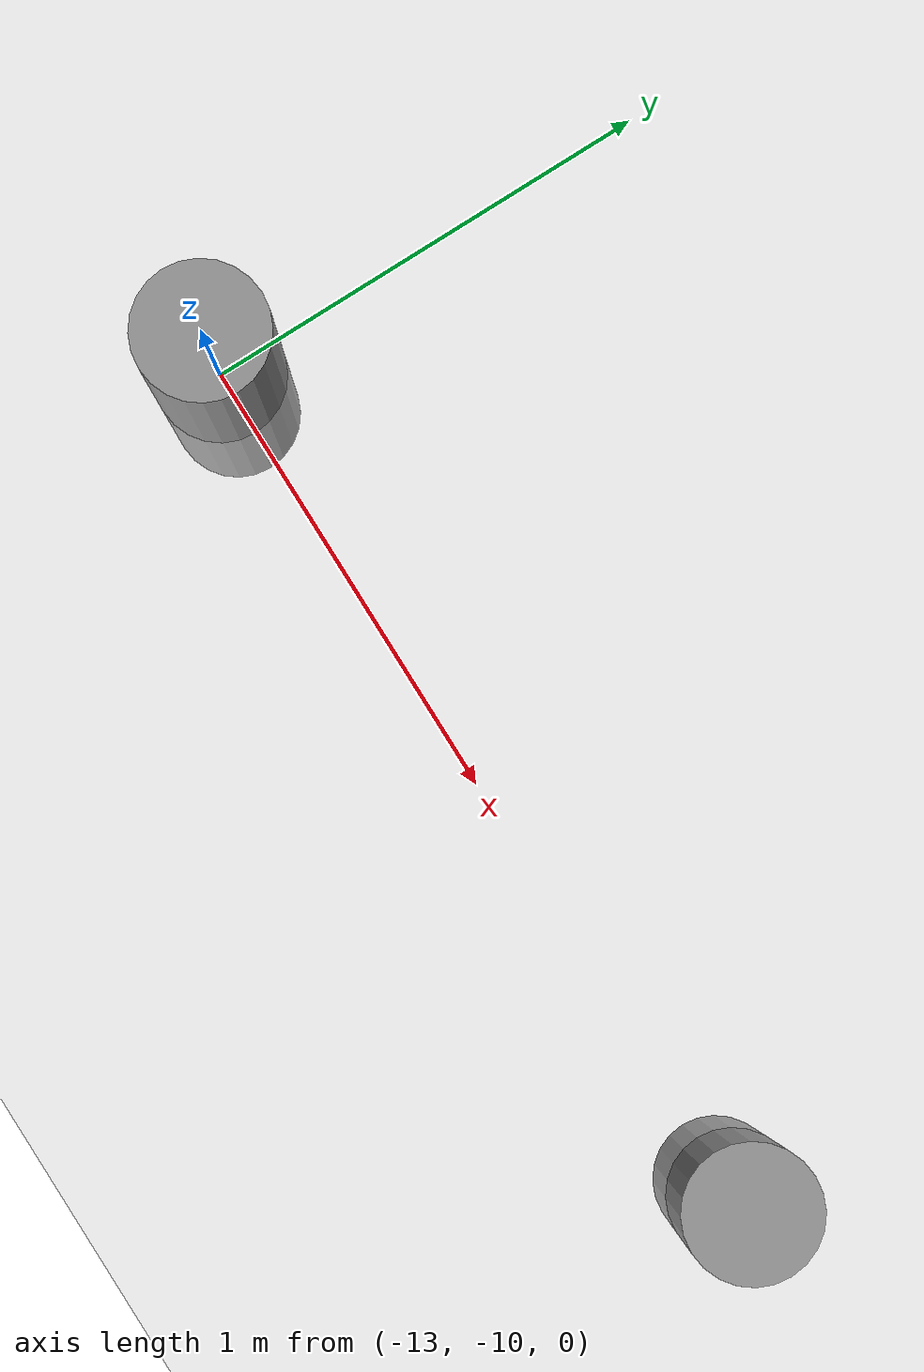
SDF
<sdf version="1.6">
 <world name="default">
  <model name="ground_plane">
   <static>1</static>
   <link name="link">
    <collision name="collision">
     <geometry><plane><normal>0 0 1</normal><size>100 100</size></plane></geometry>
     <surface><friction><ode><mu>100</mu><mu2>50</mu2></ode></friction></surface>
    </collision>
    <visual name="visual">
     <cast_shadows>0</cast_shadows>
     <geometry><plane><normal>0 0 1</normal><size>100 100</size></plane></geometry>
     <material>
      <script><uri>file://media/materials/scripts/gazebo.material</uri><name>Gazebo/Grey</name></script>
     </material>
    </visual>
   </link>
  </model>
  <model name="my_cylinder014_clone_18">
   <pose>-11 -10 0 0 -0 0</pose>
   <link name="my_cylinder014::link">
    <inertial>
     <mass>1</mass>
     <inertia><ixx>0.145833</ixx><ixy>0</ixy><ixz>0</ixz><iyy>0.145833</iyy><iyz>0</iyz><izz>0.125</izz></inertia>
    </inertial>
    <visual name="visual">
     <geometry><cylinder><radius>0.14</radius><length>2</length></cylinder></geometry>
     <material>
      <script><name>Gazebo/Grey</name><uri>file://media/materials/scripts/gazebo.material</uri></script>
      <ambient>0.3 0.3 0.3 1</ambient>
      <diffuse>0.7 0.7 0.7 1</diffuse>
      <specular>1 0.01 0.01 1</specular>
      <emissive>0 0 0 1</emissive>
      <shader type="vertex"><normal_map>__default__</normal_map></shader>
     </material>
    </visual>
    <collision name="collision">
     <geometry><cylinder><radius>0.14</radius><length>2</length></cylinder></geometry>
     <surface>
      <friction>
       <ode><mu>1</mu><mu2>1</mu2><fdir1>0 0 0</fdir1><slip1>0</slip1><slip2>0</slip2></ode>
       <torsional>
        <coefficient>1</coefficient>
        <patch_radius>0</patch_radius>
        <surface_radius>0</surface_radius>
        <use_patch_radius>1</use_patch_radius>
        <ode><slip>0</slip></ode>
       </torsional>
      </friction>
      <bounce><restitution_coefficient>0</restitution_coefficient><threshold>1e+06</threshold></bounce>
      <contact>
       <collide_without_contact>0</collide_without_contact>
       <collide_without_contact_bitmask>1</collide_without_contact_bitmask>
       <collide_bitmask>1</collide_bitmask>
       <ode>
        <soft_cfm>0</soft_cfm>
        <soft_erp>0.2</soft_erp>
        <kp>1e+13</kp>
        <kd>1</kd>
        <max_vel>0.01</max_vel>
        <min_depth>0</min_depth>
       </ode>
       <bullet>
        <split_impulse>1</split_impulse>
        <split_impulse_penetration_threshold>-0.01</split_impulse_penetration_threshold>
        <soft_cfm>0</soft_cfm>
        <soft_erp>0.2</soft_erp>
        <kp>1e+13</kp>
        <kd>1</kd>
       </bullet>
      </contact>
     </surface>
    </collision>
   </link>
   <static>1</static>
  </model>
  <model name="my_cylinder014_clone_17">
   <pose>-13 -10 0 0 -0 0</pose>
   <link name="my_cylinder014::link">
    <inertial>
     <mass>1</mass>
     <inertia><ixx>0.145833</ixx><ixy>0</ixy><ixz>0</ixz><iyy>0.145833</iyy><iyz>0</iyz><izz>0.125</izz></inertia>
    </inertial>
    <visual name="visual">
     <geometry><cylinder><radius>0.14</radius><length>2</length></cylinder></geometry>
     <material>
      <script><name>Gazebo/Grey</name><uri>file://media/materials/scripts/gazebo.material</uri></script>
      <ambient>0.3 0.3 0.3 1</ambient>
      <diffuse>0.7 0.7 0.7 1</diffuse>
      <specular>1 0.01 0.01 1</specular>
      <emissive>0 0 0 1</emissive>
      <shader type="vertex"><normal_map>__default__</normal_map></shader>
     </material>
    </visual>
    <collision name="collision">
     <geometry><cylinder><radius>0.14</radius><length>2</length></cylinder></geometry>
     <surface>
      <friction>
       <ode><mu>1</mu><mu2>1</mu2><fdir1>0 0 0</fdir1><slip1>0</slip1><slip2>0</slip2></ode>
       <torsional>
        <coefficient>1</coefficient>
        <patch_radius>0</patch_radius>
        <surface_radius>0</surface_radius>
        <use_patch_radius>1</use_patch_radius>
        <ode><slip>0</slip></ode>
       </torsional>
      </friction>
      <bounce><restitution_coefficient>0</restitution_coefficient><threshold>1e+06</threshold></bounce>
      <contact>
       <collide_without_contact>0</collide_without_contact>
       <collide_without_contact_bitmask>1</collide_without_contact_bitmask>
       <collide_bitmask>1</collide_bitmask>
       <ode>
        <soft_cfm>0</soft_cfm>
        <soft_erp>0.2</soft_erp>
        <kp>1e+13</kp>
        <kd>1</kd>
        <max_vel>0.01</max_vel>
        <min_depth>0</min_depth>
       </ode>
       <bullet>
        <split_impulse>1</split_impulse>
        <split_impulse_penetration_threshold>-0.01</split_impulse_penetration_threshold>
        <soft_cfm>0</soft_cfm>
        <soft_erp>0.2</soft_erp>
        <kp>1e+13</kp>
        <kd>1</kd>
       </bullet>
      </contact>
     </surface>
    </collision>
   </link>
   <static>1</static>
  </model>
  <model name="my_cylinder014_clone_17">
   <pose>-13 -10 0 0 -0 0</pose>
   <link name="my_cylinder014::link">
    <inertial>
     <mass>1</mass>
     <inertia><ixx>0.145833</ixx><ixy>0</ixy><ixz>0</ixz><iyy>0.145833</iyy><iyz>0</iyz><izz>0.125</izz></inertia>
    </inertial>
    <visual name="visual">
     <geometry><cylinder><radius>0.14</radius><length>2</length></cylinder></geometry>
     <material>
      <script><name>Gazebo/Grey</name><uri>file://media/materials/scripts/gazebo.material</uri></script>
      <ambient>0.3 0.3 0.3 1</ambient>
      <diffuse>0.7 0.7 0.7 1</diffuse>
      <specular>1 0.01 0.01 1</specular>
      <emissive>0 0 0 1</emissive>
      <shader type="vertex"><normal_map>__default__</normal_map></shader>
     </material>
    </visual>
    <collision name="collision">
     <geometry><cylinder><radius>0.14</radius><length>2</length></cylinder></geometry>
     <surface>
      <friction>
       <ode><mu>1</mu><mu2>1</mu2><fdir1>0 0 0</fdir1><slip1>0</slip1><slip2>0</slip2></ode>
       <torsional>
        <coefficient>1</coefficient>
        <patch_radius>0</patch_radius>
        <surface_radius>0</surface_radius>
        <use_patch_radius>1</use_patch_radius>
        <ode><slip>0</slip></ode>
       </torsional>
      </friction>
      <bounce><restitution_coefficient>0</restitution_coefficient><threshold>1e+06</threshold></bounce>
      <contact>
       <collide_without_contact>0</collide_without_contact>
       <collide_without_contact_bitmask>1</collide_without_contact_bitmask>
       <collide_bitmask>1</collide_bitmask>
       <ode>
        <soft_cfm>0</soft_cfm>
        <soft_erp>0.2</soft_erp>
        <kp>1e+13</kp>
        <kd>1</kd>
        <max_vel>0.01</max_vel>
        <min_depth>0</min_depth>
       </ode>
       <bullet>
        <split_impulse>1</split_impulse>
        <split_impulse_penetration_threshold>-0.01</split_impulse_penetration_threshold>
        <soft_cfm>0</soft_cfm>
        <soft_erp>0.2</soft_erp>
        <kp>1e+13</kp>
        <kd>1</kd>
       </bullet>
      </contact>
     </surface>
    </collision>
   </link>
   <static>1</static>
  </model>
 </world>
</sdf>
